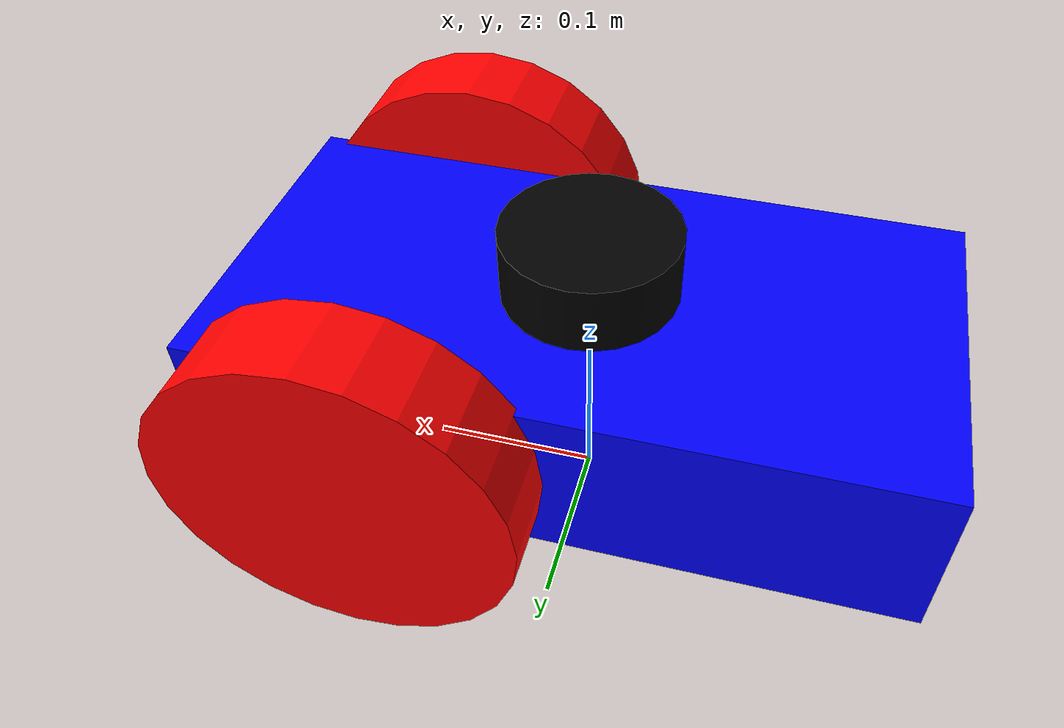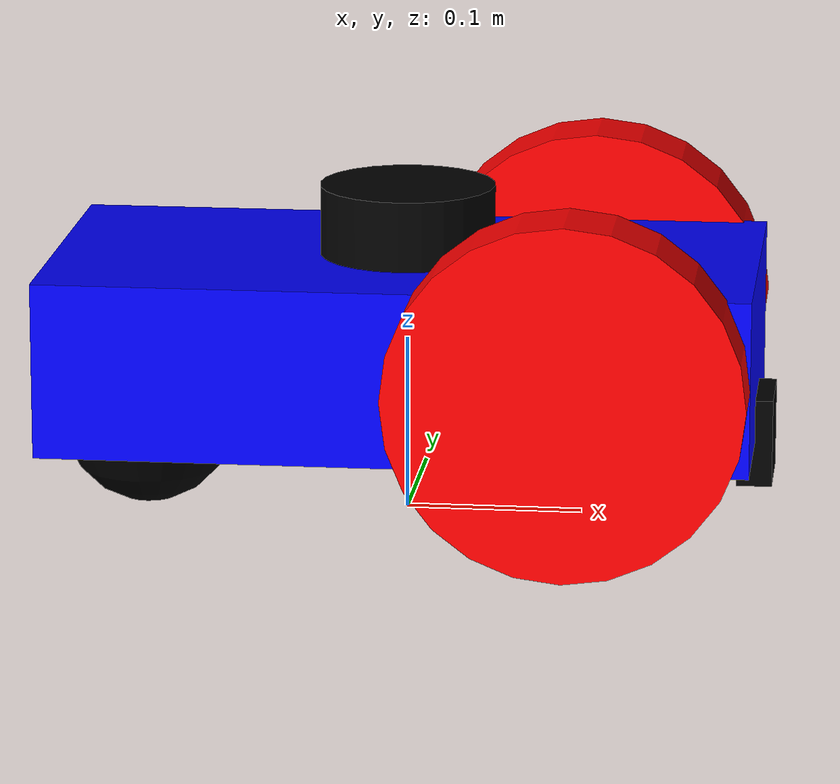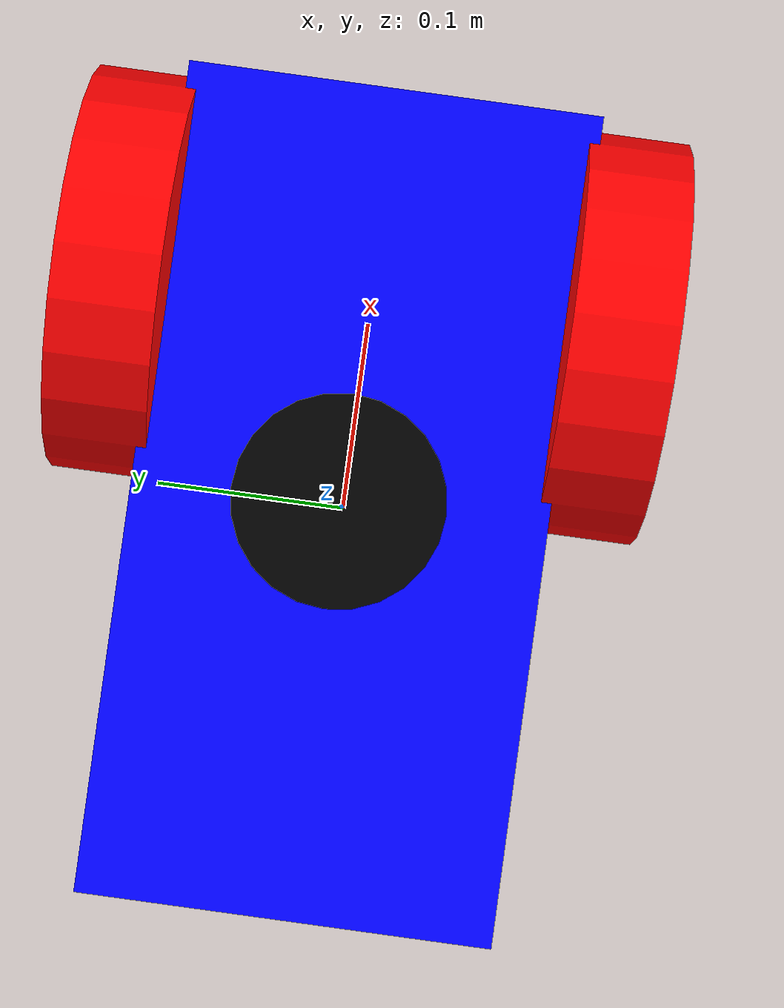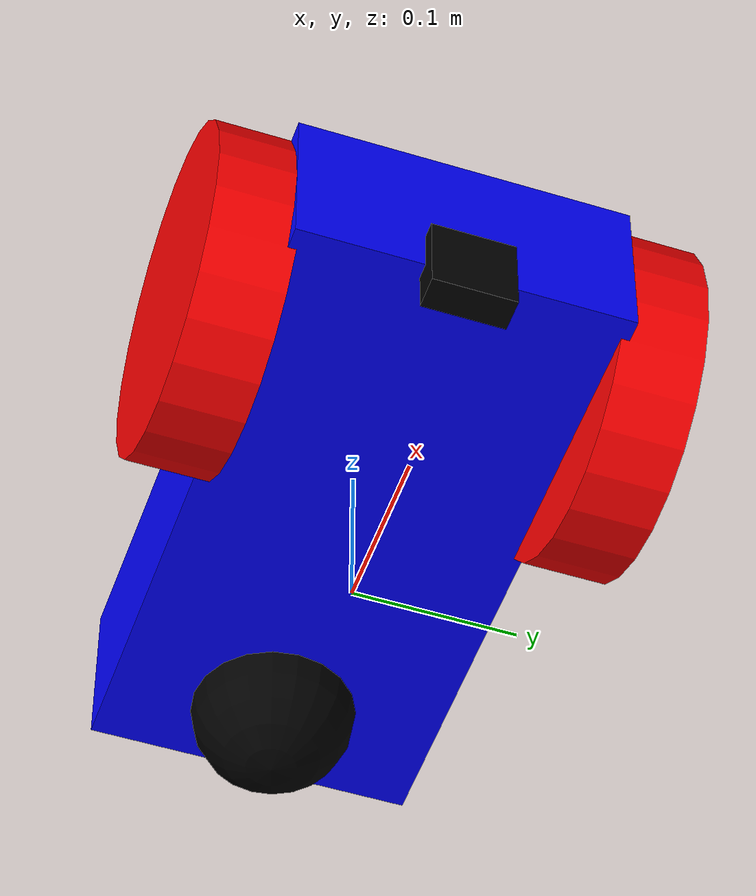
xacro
<?xml version="1.0"?>
<robot xmlns:xacro="[http://www.ros.org/wiki/xacro](http://www.ros.org/wiki/xacro)" name="suwi_rover">

  <xacro:include filename="inertia_macros.xacro" />
  <link name="base_link"></link>

  <!-- CHASSIS -->
  <link name="chassis">
    <visual>
      <origin xyz="0 0 0.1" rpy="0 0 0"/>
      <geometry><box size="0.4 0.2 0.1"/></geometry>
      <material name="blue"><color rgba="0 0 1 1"/></material>
    </visual>
    <collision>
      <origin xyz="0 0 0.1" rpy="0 0 0"/>
      <geometry><box size="0.4 0.2 0.1"/></geometry>
    </collision>
    <xacro:inertial_box mass="1.0" x="0.4" y="0.2" z="0.1">
      <origin xyz="0 0 0.1" rpy="0 0 0"/>
    </xacro:inertial_box>
  </link>
  <gazebo reference="chassis"><material>Gazebo/Blue</material></gazebo>

  <joint name="base_to_chassis" type="fixed">
    <parent link="base_link"/>
    <child link="chassis"/>
  </joint>

  <!-- CASTER WHEEL -->
  <link name="caster_wheel">
    <visual>
      <geometry><sphere radius="0.05"/></geometry>
      <material name="black"><color rgba="0 0 0 1"/></material>
    </visual>
    <collision><geometry><sphere radius="0.05"/></geometry></collision>
    <xacro:inertial_cylinder mass="0.1" length="0.1" radius="0.05">
      <origin xyz="0 0 0" rpy="0 0 0"/>
    </xacro:inertial_cylinder>
  </link>
  <gazebo reference="caster_wheel"><material>Gazebo/Black</material><mu1>0.0</mu1><mu2>0.0</mu2></gazebo>
  <joint name="chassis_to_caster" type="fixed"><parent link="chassis"/><child link="caster_wheel"/><origin xyz="-0.15 0 0.05"/></joint>

  <!-- DRIVE WHEELS -->
  <xacro:macro name="wheel" params="prefix y_offset">
    <link name="${prefix}_wheel">
      <visual>
        <origin xyz="0 0 0" rpy="1.57 0 0"/>
        <geometry><cylinder radius="0.1" length="0.05"/></geometry>
        <material name="red"><color rgba="1 0 0 1"/></material>
      </visual>
      <collision><origin xyz="0 0 0" rpy="1.57 0 0"/><geometry><cylinder radius="0.1" length="0.05"/></geometry></collision>
      <xacro:inertial_cylinder mass="0.2" length="0.05" radius="0.1"><origin xyz="0 0 0" rpy="1.57 0 0"/></xacro:inertial_cylinder>
    </link>
    <gazebo reference="${prefix}_wheel"><material>Gazebo/Red</material><mu1>1.0</mu1><mu2>1.0</mu2></gazebo>
    <joint name="chassis_to_${prefix}_wheel" type="continuous"><parent link="chassis"/><child link="${prefix}_wheel"/><origin xyz="0.1 ${y_offset} 0.1"/><axis xyz="0 1 0"/> </joint>
  </xacro:macro>
  <xacro:wheel prefix="left" y_offset="0.12" />
  <xacro:wheel prefix="right" y_offset="-0.12" />

  <!-- LIDAR SENSOR -->
  <link name="lidar_link">
    <visual><geometry><cylinder radius="0.05" length="0.04"/></geometry><material name="black"><color rgba="0 0 0 1"/></material></visual>
    <collision><geometry><cylinder radius="0.05" length="0.04"/></geometry></collision>
    <xacro:inertial_cylinder mass="0.1" length="0.04" radius="0.05"><origin xyz="0 0 0" rpy="0 0 0"/></xacro:inertial_cylinder>
  </link>
  <joint name="chassis_to_lidar" type="fixed"><parent link="chassis"/><child link="lidar_link"/><origin xyz="0 0 0.17"/></joint>

  <gazebo reference="lidar_link">
    <material>Gazebo/Black</material>
    <sensor type="ray" name="lidar_sensor">
      <pose>0 0 0 0 0 0</pose><visualize>true</visualize><update_rate>10</update_rate>
      <ray><scan><horizontal><samples>360</samples><resolution>1</resolution><min_angle>-3.14</min_angle><max_angle>3.14</max_angle></horizontal></scan><range><min>0.3</min><max>12.0</max></range></ray>
      <plugin name="laser_controller" filename="libgazebo_ros_ray_sensor.so"><ros><remapping>~/out:=scan</remapping></ros><output_type>sensor_msgs/LaserScan</output_type><frame_name>lidar_link</frame_name></plugin>
    </sensor>
  </gazebo>

  <!-- NEW: CAMERA SENSOR                         -->
  <link name="camera_link">
    <visual>
      <geometry><box size="0.02 0.05 0.05"/></geometry>
      <material name="black"><color rgba="0 0 0 1"/></material>
    </visual>
    <collision><geometry><box size="0.02 0.05 0.05"/></geometry></collision>
    <xacro:inertial_box mass="0.05" x="0.02" y="0.05" z="0.05"><origin xyz="0 0 0" rpy="0 0 0"/></xacro:inertial_box>
  </link>

  <joint name="chassis_to_camera" type="fixed">
    <parent link="chassis"/>
    <child link="camera_link"/>
    <!-- Mounted on the front of the chassis (x=0.2) -->
    <origin xyz="0.2 0 0.05"/>
  </joint>

  <!-- GAZEBO CAMERA PLUGIN -->
  <gazebo reference="camera_link">
    <sensor type="camera" name="front_camera">
      <update_rate>30.0</update_rate>
      <camera>
        <horizontal_fov>1.089</horizontal_fov>
        <image>
          <format>R8G8B8</format>
          <width>640</width>
          <height>480</height>
        </image>
        <clip>
          <near>0.05</near>
          <far>8.0</far>
        </clip>
      </camera>
      <plugin name="camera_controller" filename="libgazebo_ros_camera.so">
        <frame_name>camera_link</frame_name>
      </plugin>
    </sensor>
  </gazebo>

  <!-- MOTOR PLUGIN -->
  <gazebo>
    <plugin name="diff_drive" filename="libgazebo_ros_diff_drive.so">
      <left_joint>chassis_to_left_wheel</left_joint>
      <right_joint>chassis_to_right_wheel</right_joint>
      <wheel_separation>0.24</wheel_separation>
      <wheel_diameter>0.2</wheel_diameter>
      <max_wheel_torque>20</max_wheel_torque>
      <max_wheel_acceleration>1.0</max_wheel_acceleration>
      <command_topic>cmd_vel</command_topic>
      <publish_odom>true</publish_odom>
      <publish_odom_tf>true</publish_odom_tf>
      <publish_wheel_tf>true</publish_wheel_tf>
      <odometry_frame>odom</odometry_frame>
      <robot_base_frame>base_link</robot_base_frame>
    </plugin>
  </gazebo>

  <link name="imu_link">
    <visual>
      <geometry>
        <box size="0.05 0.05 0.05"/>
      </geometry>
      <material name="black"/>
    </visual>
  </link>

  <joint name="imu_joint" type="fixed">
    <parent link="chassis"/>
    <child link="imu_link"/>
    <origin xyz="0 0 0.1" rpy="0 0 0"/>
  </joint>

  <gazebo reference="imu_link">
    <sensor name="imu_sensor" type="imu">
      <plugin filename="libgazebo_ros_imu_sensor.so" name="imu_plugin">
        <ros>
          <namespace>/imu</namespace>
          <remapping>~/out:=data</remapping>
        </ros>
        <initial_orientation_as_reference>false</initial_orientation_as_reference>
      </plugin>
      <always_on>true</always_on>
      <update_rate>100</update_rate>
      <visualize>true</visualize>
    </sensor>
  </gazebo>

</robot>

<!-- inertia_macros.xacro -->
<robot xmlns:xacro="[http://www.ros.org/wiki/xacro](http://www.ros.org/wiki/xacro)">

  <!-- Macro for calculating the inertia of a Box -->
  <xacro:macro name="inertial_box" params="mass x y z *origin">
    <inertial>
      <xacro:insert_block name="origin"/>
      <mass value="${mass}" />
      <inertia ixx="${(1/12) * mass * (y*y+z*z)}" ixy="0.0" ixz="0.0"
               iyy="${(1/12) * mass * (x*x+z*z)}" iyz="0.0"
               izz="${(1/12) * mass * (x*x+y*y)}" />
    </inertial>
  </xacro:macro>

  <!-- Macro for calculating the inertia of a Cylinder -->
  <xacro:macro name="inertial_cylinder" params="mass length radius *origin">
    <inertial>
      <xacro:insert_block name="origin"/>
      <mass value="${mass}" />
      <inertia ixx="${(1/12) * mass * (3*radius*radius + length*length)}" ixy="0.0" ixz="0.0"
               iyy="${(1/12) * mass * (3*radius*radius + length*length)}" iyz="0.0"
               izz="${(1/2) * mass * (radius*radius)}" />
    </inertial>
  </xacro:macro>

</robot>
